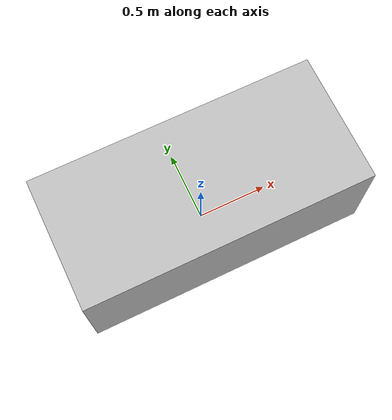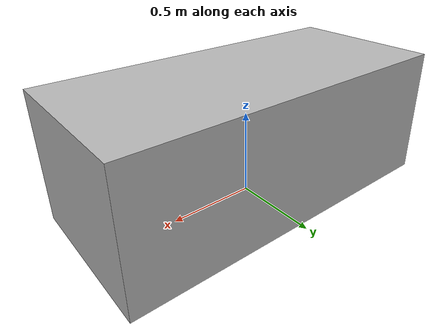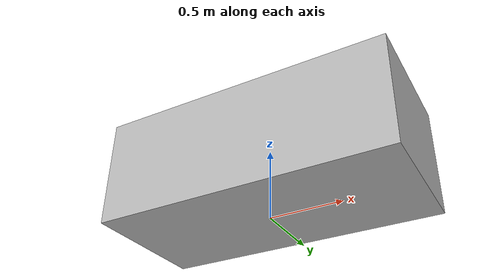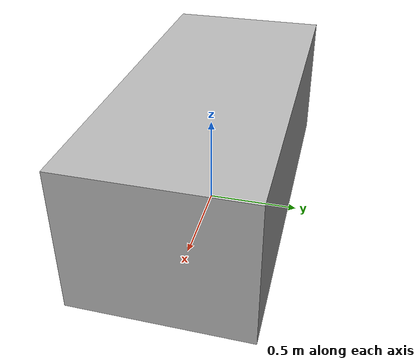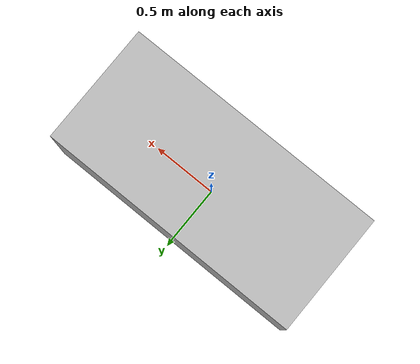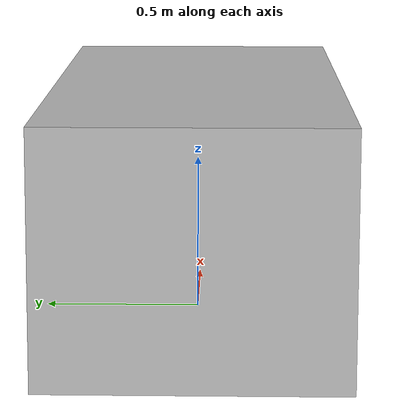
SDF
<?xml version="1.0" ?>
<sdf version="1.4">
  <model name="table">
    <static>true</static>
    <link name="link">
      <collision name="surface">
        <pose>0 0 0.3775 0 0 0</pose>
        <geometry>
          <box>
            <size>2 0.913 0.755</size>
          </box>
        </geometry>
      </collision>
      <visual name="visual">
        <pose>0 0 0.3775 0 0 0</pose>
        <geometry>
          <box>
            <size>2 0.913 0.755</size>
          </box>
        </geometry>
      </visual>
    </link>
  </model>
</sdf>
